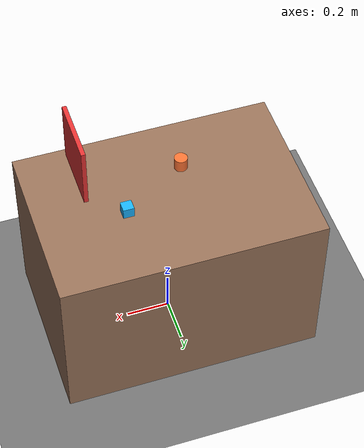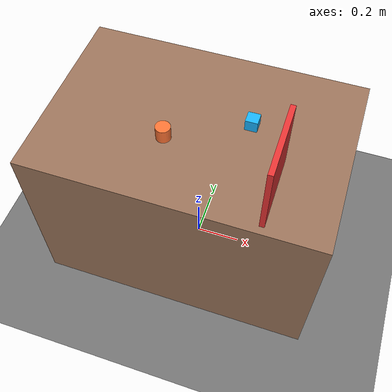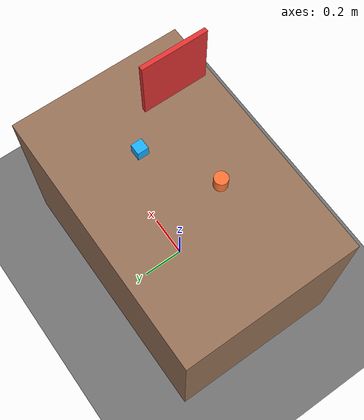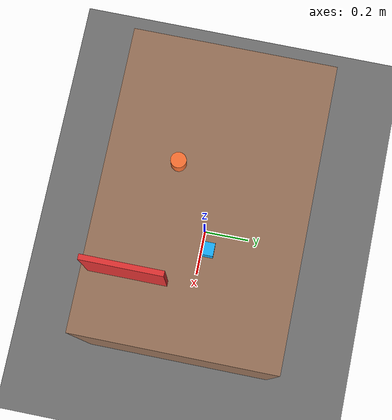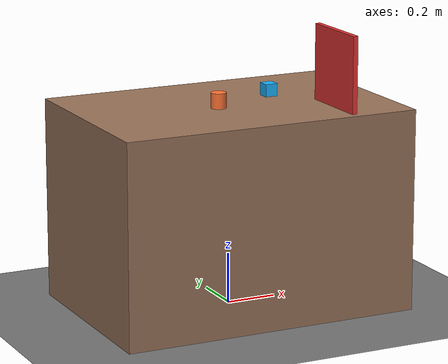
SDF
<?xml version="1.0" ?>
<sdf version="1.9">
  <world name="tabletop_world">
    <gravity>0 0 -9.8</gravity>

    <plugin
      filename="gz-sim-physics-system"
      name="gz::sim::systems::Physics"/>
    <plugin
      filename="gz-sim-user-commands-system"
      name="gz::sim::systems::UserCommands"/>
    <plugin
      filename="gz-sim-scene-broadcaster-system"
      name="gz::sim::systems::SceneBroadcaster"/>

    <light name="sun" type="directional">
      <cast_shadows>true</cast_shadows>
      <pose>0 0 10 0 0 0</pose>
      <diffuse>0.8 0.8 0.8 1</diffuse>
      <specular>0.2 0.2 0.2 1</specular>
      <attenuation>
        <range>1000</range>
        <constant>0.9</constant>
        <linear>0.01</linear>
        <quadratic>0.001</quadratic>
      </attenuation>
      <direction>-0.5 0.1 -1</direction>
    </light>

    <model name="ground_plane">
      <static>true</static>
      <link name="link">
        <collision name="collision">
          <geometry>
            <plane>
              <normal>0 0 1</normal>
              <size>20 20</size>
            </plane>
          </geometry>
        </collision>
        <visual name="visual">
          <geometry>
            <plane>
              <normal>0 0 1</normal>
              <size>20 20</size>
            </plane>
          </geometry>
          <material>
            <ambient>0.35 0.35 0.35 1</ambient>
            <diffuse>0.45 0.45 0.45 1</diffuse>
          </material>
        </visual>
      </link>
    </model>

    <model name="table">
      <static>true</static>
      <pose>0 0 0.4 0 0 0</pose>
      <link name="table_link">
        <collision name="table_collision">
          <geometry>
            <box>
              <size>1.2 0.8 0.8</size>
            </box>
          </geometry>
        </collision>
        <visual name="table_visual">
          <geometry>
            <box>
              <size>1.2 0.8 0.8</size>
            </box>
          </geometry>
          <material>
            <ambient>0.5 0.4 0.3 1</ambient>
            <diffuse>0.6 0.45 0.35 1</diffuse>
          </material>
        </visual>
      </link>
    </model>

    <model name="pick_object_box">
      <pose>0.20 0.05 0.83 0 0 0</pose>
      <link name="link">
        <inertial>
          <mass>0.2</mass>
          <inertia>
            <ixx>0.0002</ixx><iyy>0.0002</iyy><izz>0.0002</izz>
          </inertia>
        </inertial>
        <collision name="collision">
          <geometry>
            <box>
              <size>0.05 0.05 0.05</size>
            </box>
          </geometry>
        </collision>
        <visual name="visual">
          <geometry>
            <box>
              <size>0.05 0.05 0.05</size>
            </box>
          </geometry>
          <material>
            <ambient>0.1 0.6 0.9 1</ambient>
            <diffuse>0.1 0.7 1.0 1</diffuse>
          </material>
        </visual>
      </link>
    </model>

    <model name="pick_object_cylinder">
      <pose>-0.10 -0.12 0.85 0 0 0</pose>
      <link name="link">
        <inertial>
          <mass>0.15</mass>
          <inertia>
            <ixx>0.00015</ixx><iyy>0.00015</iyy><izz>0.00008</izz>
          </inertia>
        </inertial>
        <collision name="collision">
          <geometry>
            <cylinder>
              <radius>0.03</radius>
              <length>0.06</length>
            </cylinder>
          </geometry>
        </collision>
        <visual name="visual">
          <geometry>
            <cylinder>
              <radius>0.03</radius>
              <length>0.06</length>
            </cylinder>
          </geometry>
          <material>
            <ambient>0.9 0.4 0.2 1</ambient>
            <diffuse>1.0 0.45 0.2 1</diffuse>
          </material>
        </visual>
      </link>
    </model>

    <model name="obstacle_wall">
      <static>true</static>
      <pose>0.35 -0.22 0.95 0 0 0</pose>
      <link name="link">
        <collision name="collision">
          <geometry>
            <box>
              <size>0.02 0.30 0.30</size>
            </box>
          </geometry>
        </collision>
        <visual name="visual">
          <geometry>
            <box>
              <size>0.02 0.30 0.30</size>
            </box>
          </geometry>
          <material>
            <ambient>0.8 0.2 0.2 1</ambient>
            <diffuse>0.9 0.2 0.2 1</diffuse>
          </material>
        </visual>
      </link>
    </model>
  </world>
</sdf>
